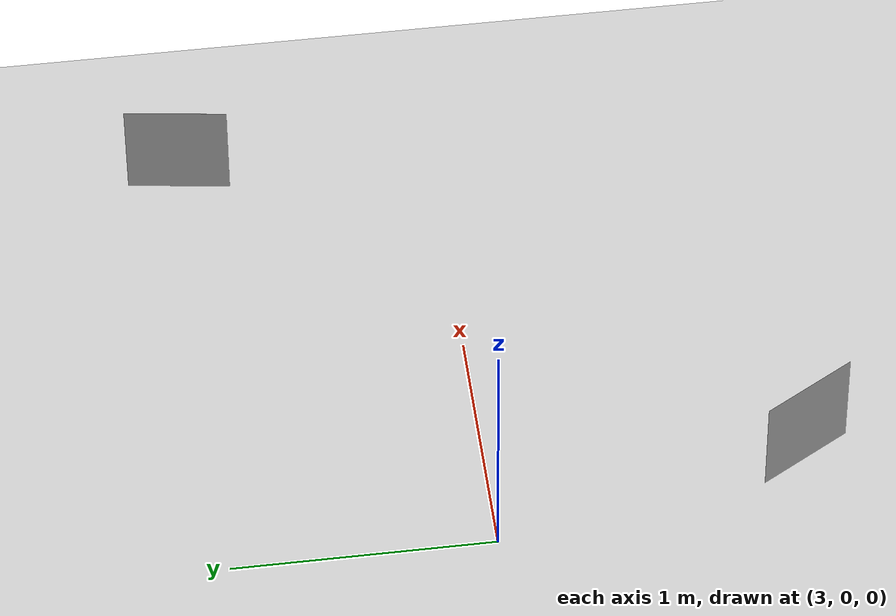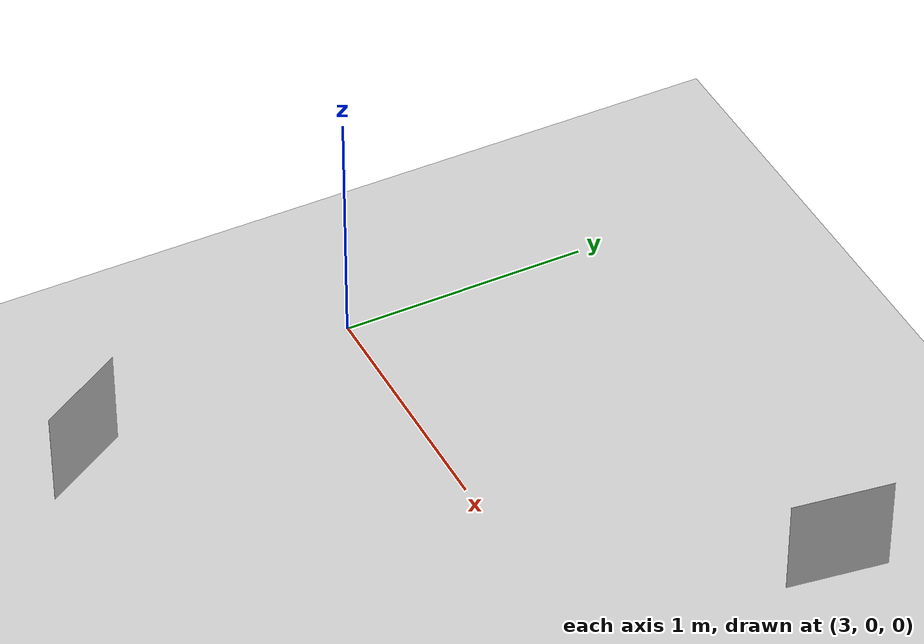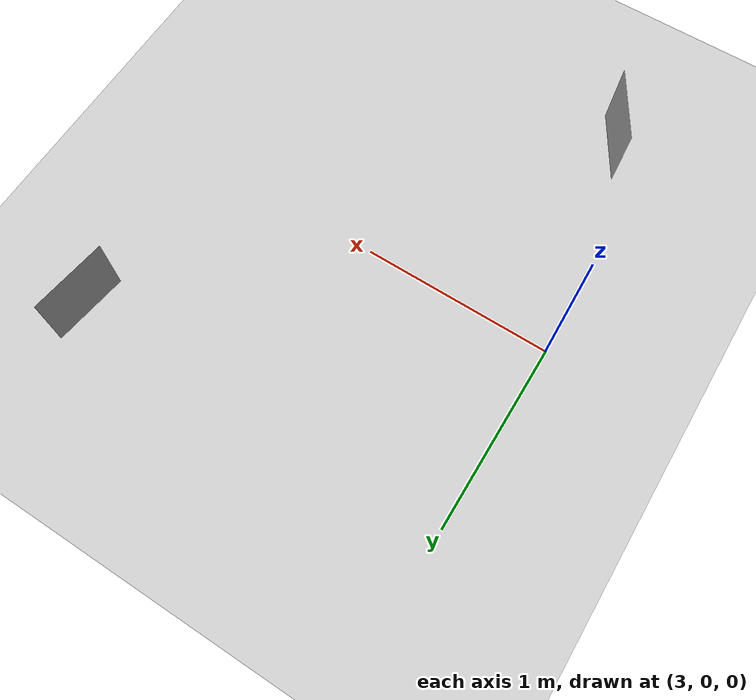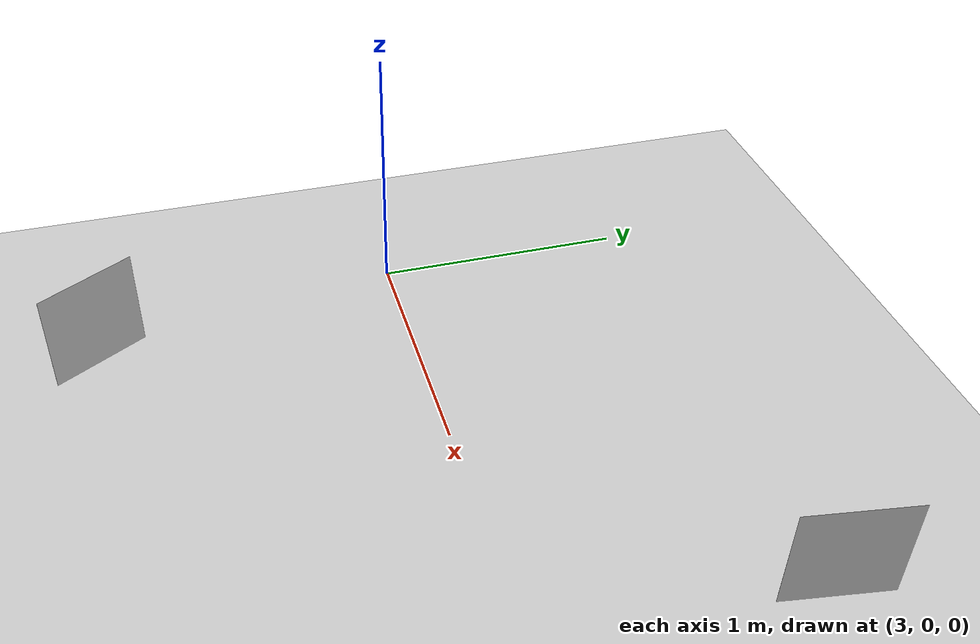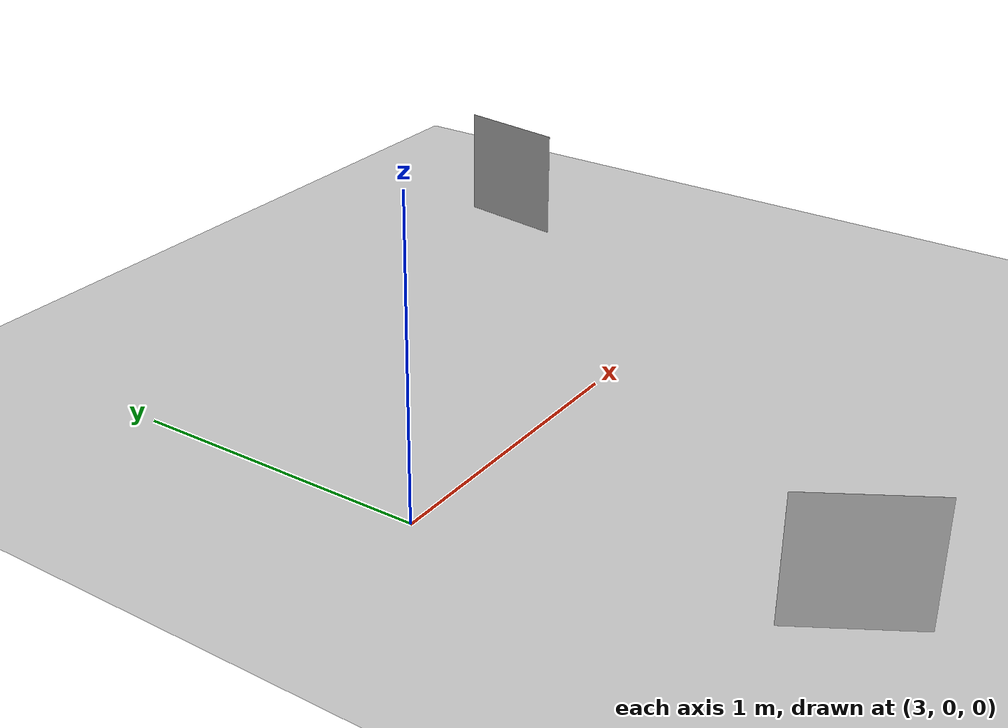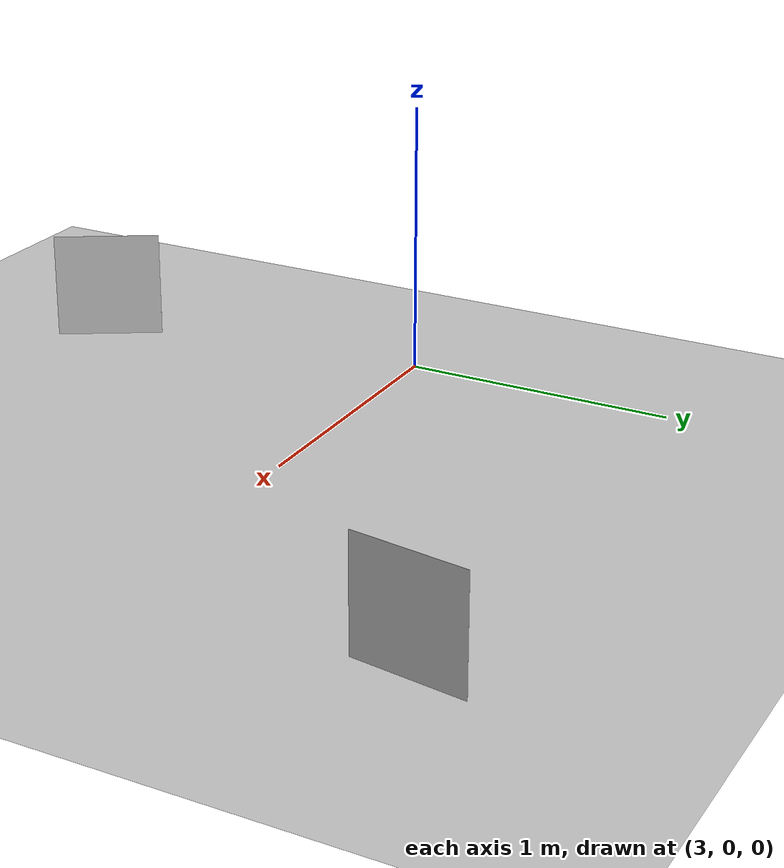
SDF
<?xml version="1.0" ?>
<sdf version="1.5">
  <world name="markers">
    <!-- A global light source -->
    <include>
      <uri>model://sun</uri>
    </include>
    <!-- A ground plane -->
    <include>
      <uri>model://ground_plane</uri>
    </include>

    <include>
      <name>aruco_marker</name>
      <uri>model://aruco_marker</uri>
      <pose frame=''>3.26157 -1.2 0 0 -0 -2.6</pose>
    </include>

    <include>
      <name>aruco_marker02</name>
      <uri>model://aruco_marker02</uri>
      <pose frame=''>5 1 0 0 -0 3.0</pose>
    </include>

  </world>
</sdf>

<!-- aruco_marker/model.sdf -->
<sdf version="1.6">
  <model name="aruco_marker">
    <link name="link">
      <inertial>
        <pose>0 0 0 0 0 0</pose>
        <mass>0.001</mass>
        <inertia>
          <ixx>3.7499999999999997e-06</ixx>
          <ixy>0.0</ixy>
          <ixz>0.0</ixz>
          <iyy>1.8750008333333333e-06</iyy>
          <iyz>0.0</iyz>
          <izz>1.8750008333333333e-06</izz>
        </inertia>
      </inertial>
      <visual name="front_visual">
        <pose>0.00005 0 0.2 0 0 0</pose>
        <geometry>
          <box>
            <size>0.0001 0.4 0.4</size>
          </box>
        </geometry>
        <material>
          <script>
            <uri>model://aruco_marker/materials/scripts</uri>
            <uri>model://aruco_marker/materials/textures</uri>
            <name>Marker</name>
          </script>
        </material>
      </visual>
      <!-- Hide the marker from the back -->
      <visual name="rear_visual">
        <pose>-0.00005 0 0.2 0 0 0</pose>
        <geometry>
          <box>
            <size>0.0001 0.4 0.4</size>
          </box>
        </geometry>
      </visual>
      <collision name="collision">
        <pose>0 0 0 0 0 0</pose>
        <geometry>
          <box>
            <size>0.0001 0.15 0.15</size>
          </box>
        </geometry>
      </collision>
    </link>
  </model>
</sdf>

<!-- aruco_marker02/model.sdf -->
<sdf version="1.6">
  <model name="aruco_marker02">
    <link name="link">
      <inertial>
        <pose>0 0 0 0 0 0</pose>
        <mass>0.001</mass>
        <inertia>
          <ixx>3.7499999999999997e-06</ixx>
          <ixy>0.0</ixy>
          <ixz>0.0</ixz>
          <iyy>1.8750008333333333e-06</iyy>
          <iyz>0.0</iyz>
          <izz>1.8750008333333333e-06</izz>
        </inertia>
      </inertial>
      <visual name="front_visual">
        <pose>0.00005 0 0.2 0 0 0</pose>
        <geometry>
          <box>
            <size>0.0001 0.4 0.4</size>
          </box>
        </geometry>
        <material>
          <script>
            <uri>model://aruco_marker02/materials/scripts</uri>
            <uri>model://aruco_marker02/materials/textures</uri>
            <name>Marker</name>
          </script>
        </material>
      </visual>
      <!-- Hide the marker from the back -->
      <visual name="rear_visual">
        <pose>-0.00005 0 0.2 0 0 0</pose>
        <geometry>
          <box>
            <size>0.0001 0.4 0.4</size>
          </box>
        </geometry>
      </visual>
      <collision name="collision">
        <pose>0 0 0 0 0 0</pose>
        <geometry>
          <box>
            <size>0.0001 0.15 0.15</size>
          </box>
        </geometry>
      </collision>
    </link>
  </model>
</sdf>
